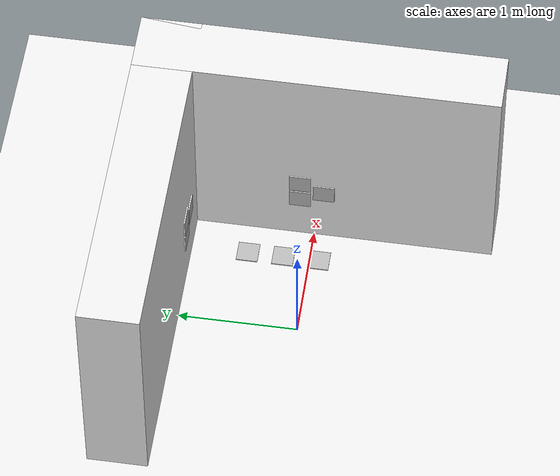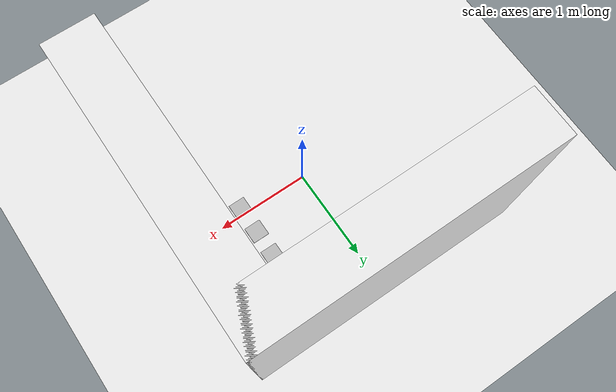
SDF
<?xml version="1.0" ?>
<sdf version='1.4'>
  <world name='calibration'>

    <light type="directional" name="sun">
      <cast_shadows>false</cast_shadows>
      <pose>0 1 10 0 0 0</pose>
      <diffuse>0.9 0.9 0.9 1</diffuse>
      <specular>0.9 0.9 0.9 1</specular>
      <attenuation>
        <range>1000</range>
        <constant>0.9</constant>
        <linear>0.01</linear>
        <quadratic>0.001</quadratic>
      </attenuation>
      <direction>0.5 0.5 -1.0</direction>
    </light>

    <light name='more_light' type='directional'>
      <pose>-2.000000 -2.000000 10.000000 0.000000 0.000000 0.000000</pose>
      <diffuse>0.900000 0.900000 0.900000 1.000000</diffuse>
      <specular>0.100000 0.100000 0.100000 1.000000</specular>
      <attenuation>
        <range>200.000000</range>
      </attenuation>
      <direction>0.100000 0.100000 -1.000000</direction>
      <cast_shadows>0</cast_shadows>
    </light>

    <light name='spot_light' type='point_light'>
      <pose>0.500000 0.500000 0.500000 0.000000 0.000000 0.000000</pose>
      <diffuse>1.000000 1.000000 1.000000 1.000000</diffuse>
      <specular>0.500000 0.500000 0.500000 1.000000</specular>
      <attenuation>
        <range>20.000000</range>
      </attenuation>
      <cast_shadows>0</cast_shadows>
    </light>

    <model name="floor">
      <static>true</static>
      <link name="link">
      <pose>0 0 0 0 0 0</pose>
        <visual name="visual">
          <cast_shadows>false</cast_shadows>
          <geometry>
            <plane>
              <normal>0 0 1</normal>
              <size>15 15</size>
            </plane>
          </geometry>
          <material>
            <script>
              <uri>file://media/materials/scripts/gazebo.material</uri>
              <name>Gazebo/White</name>
            </script>
          </material>
        </visual>
        <collision name="collision">
          <geometry>
            <plane>
              <normal>0 0 1</normal>
              <size>15 15</size>
            </plane>
          </geometry>
          <surface>
            <friction>
              <ode>
                <mu>100</mu>
                <mu2>50</mu2>
              </ode>
            </friction>
          </surface>
        </collision>
      </link>
    </model>

    <model name='wall_1'>
      <static>true</static>
      <pose>1.25 0 1 0 0 0</pose>
      <link name='link'>
        <collision name='collision'>
          <geometry>
            <box>
              <size>0.5 3 2</size>
            </box>
          </geometry>
        </collision>
        <visual name='visual'>
          <geometry>
            <box>
              <size>0.5 3 2</size>
            </box>
          </geometry>
          <material>
            <script>
              <uri>file://media/materials/scripts/gazebo.material</uri>
              <name>Gazebo/White</name>
            </script>
          </material>
        </visual>
      </link>
    </model>

    <model name='wall_2'>
      <static>true</static>
      <pose>0 1.25 1 0 0 0</pose>
      <link name='link'>
        <collision name='collision'>
          <geometry>
            <box>
              <size>3 0.5 2</size>
            </box>
          </geometry>
        </collision>
        <visual name='visual'>
          <geometry>
            <box>
              <size>3 0.5 2</size>
            </box>
          </geometry>
          <material>
            <script>
              <uri>file://media/materials/scripts/gazebo.material</uri>
              <name>Gazebo/White</name>
            </script>
          </material>
        </visual>
      </link>
    </model>

    <model name='calibration_setup_tag25'>
      <static>true</static>
      <pose>1.00 0.2 0.75 0 0 0</pose>
      <link name='tag25'>
        <pose>0 0.015 -0.165 0 0 0</pose>
        <collision name='collision'>
          <pose>0 0 0 0 0 0</pose>
          <geometry>
            <box>
              <size>0.1 0.15 0.15</size>
            </box>
          </geometry>
        </collision>
        <visual name='visual'>
          <pose>0 0 0 0 0 0</pose>
          <geometry>
            <mesh>
              <scale>1.0 1.5 1.5</scale>
              <uri>model://prefabs/pitags/tag25.dae</uri>
            </mesh>
          </geometry>
        </visual>
      </link>
    </model>

    <model name='calibration_setup_tag36'>
      <static>true</static>
      <pose>1.00 0.2 0.55 0 0 0</pose>
      <link name='tag36'>
        <pose>0 0.015 -0.165 0 0 0</pose>
        <collision name='collision'>
          <pose>0 0 0 0 0 0</pose>
          <geometry>
            <box>
              <size>0.1 0.15 0.15</size>
            </box>
          </geometry>
        </collision>
        <visual name='visual'>
          <pose>0 0 0 0 0 0</pose>
          <geometry>
            <mesh>
              <scale>1.0 1.5 1.5</scale>
              <uri>model://prefabs/pitags/tag36.dae</uri>
            </mesh>
          </geometry>
        </visual>
      </link>
    </model>

    <model name='calibration_setup_tag38'>
      <static>true</static>
      <pose>1.00 0.0 0.65 0 0 0</pose>
      <link name='tag38'>
        <pose>0 0.015 -0.165 0 0 0</pose>
        <collision name='collision'>
          <pose>0 0 0 0 0 0</pose>
          <geometry>
            <box>
              <size>0.1 0.15 0.15</size>
            </box>
          </geometry>
        </collision>
        <visual name='visual'>
          <pose>0 0 0 0 0 0</pose>
          <geometry>
            <mesh>
              <scale>1.0 1.5 1.5</scale>
              <uri>model://prefabs/pitags/tag38.dae</uri>
            </mesh>
          </geometry>
        </visual>
      </link>
    </model>

    <model name='calibration_setup_tag48'>
      <static>true</static>
      <pose>0.4 1.0 0.75 0 0 1.571</pose>
      <link name='tag48'>
        <pose>0 0.015 -0.165 0 0 0</pose>
        <collision name='collision'>
          <pose>0 0 0 0 0 0</pose>
          <geometry>
            <box>
              <size>0.1 0.15 0.15</size>
            </box>
          </geometry>
        </collision>
        <visual name='visual'>
          <pose>0 0 0 0 0 0</pose>
          <geometry>
            <mesh>
              <scale>1.0 1.5 1.5</scale>
              <uri>model://prefabs/pitags/tag48.dae</uri>
            </mesh>
          </geometry>
        </visual>
      </link>
    </model>

    <model name='calibration_setup_tag55'>
      <static>true</static>
      <pose>0.4 1.0 0.55 0 0 1.571</pose>
      <link name='tag55'>
        <pose>0 0.015 -0.165 0 0 0</pose>
        <collision name='collision'>
          <pose>0 0 0 0 0 0</pose>
          <geometry>
            <box>
              <size>0.1 0.15 0.15</size>
            </box>
          </geometry>
        </collision>
        <visual name='visual'>
          <pose>0 0 0 0 0 0</pose>
          <geometry>
            <mesh>
              <scale>1.0 1.5 1.5</scale>
              <uri>model://prefabs/pitags/tag55.dae</uri>
            </mesh>
          </geometry>
        </visual>
      </link>
    </model>

    <model name='calibration_setup_tag64'>
      <static>true</static>
      <pose>0.6 1.0 0.65 0 0 1.571</pose>
      <link name='tag64'>
        <pose>0 0.015 -0.165 0 0 0</pose>
        <collision name='collision'>
          <pose>0 0 0 0 0 0</pose>
          <geometry>
            <box>
              <size>0.1 0.15 0.15</size>
            </box>
          </geometry>
        </collision>
        <visual name='visual'>
          <pose>0 0 0 0 0 0</pose>
          <geometry>
            <mesh>
              <scale>1.0 1.5 1.5</scale>
              <uri>model://prefabs/pitags/tag64.dae</uri>
            </mesh>
          </geometry>
        </visual>
      </link>
    </model>

    <model name='calibration_setup_tag69'>
      <static>true</static>
      <pose>0.8 0.6 0.0 0 1.571 0</pose>
      <link name='tag64'>
        <pose>0 0.015 -0.165 0 0 0</pose>
        <collision name='collision'>
          <pose>0 0 0 0 0 0</pose>
          <geometry>
            <box>
              <size>0.1 0.15 0.15</size>
            </box>
          </geometry>
        </collision>
        <visual name='visual'>
          <pose>0 0 0 0 0 0</pose>
          <geometry>
            <mesh>
              <scale>1.0 1.5 1.5</scale>
              <uri>model://prefabs/pitags/tag69.dae</uri>
            </mesh>
          </geometry>
        </visual>
      </link>
    </model>

    <model name='calibration_setup_tag73'>
      <static>true</static>
      <pose>0.8 0.3 0.0 0 1.571 0</pose>
      <link name='tag73'>
        <pose>0 0.015 -0.165 0 0 0</pose>
        <collision name='collision'>
          <pose>0 0 0 0 0 0</pose>
          <geometry>
            <box>
              <size>0.1 0.15 0.15</size>
            </box>
          </geometry>
        </collision>
        <visual name='visual'>
          <pose>0 0 0 0 0 0</pose>
          <geometry>
            <mesh>
              <scale>1.0 1.5 1.5</scale>
              <uri>model://prefabs/pitags/tag73.dae</uri>
            </mesh>
          </geometry>
        </visual>
      </link>
    </model>

    <model name='calibration_setup_tag79'>
      <static>true</static>
      <pose>0.8 0.0 0.0 0 1.571 0</pose>
      <link name='tag79'>
        <pose>0 0.015 -0.165 0 0 0</pose>
        <collision name='collision'>
          <pose>0 0 0 0 0 0</pose>
          <geometry>
            <box>
              <size>0.1 0.15 0.15</size>
            </box>
          </geometry>
        </collision>
        <visual name='visual'>
          <pose>0 0 0 0 0 0</pose>
          <geometry>
            <mesh>
              <scale>1.0 1.5 1.5</scale>
              <uri>model://prefabs/pitags/tag79.dae</uri>
            </mesh>
          </geometry>
        </visual>
      </link>
    </model>

    <gui>
      <camera name='user_camera'>
        <pose>-4 -4 6 0 0.7 0.7</pose>
      </camera>
    </gui>

  </world>
</sdf>
